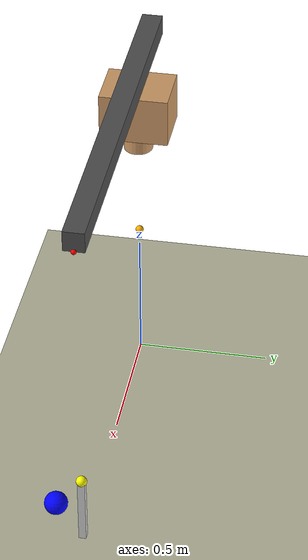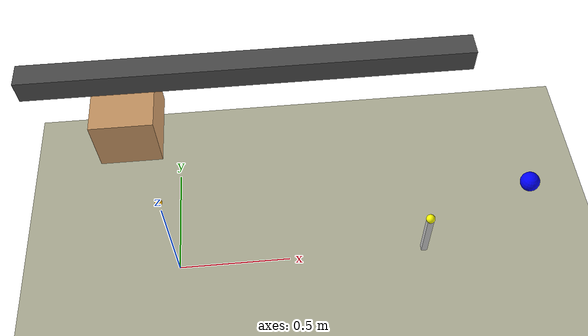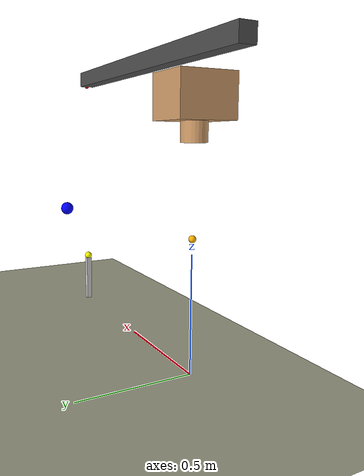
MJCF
<mujoco model="Moving Crane">
  <include file="../common.xml"/>
  <include file="crane_free_joint_copy.xml" />
  <!-- include file="prismatic_crane_4ft_double_pendulum_ball_joint.xml" / -->
  <!-- include file="no_platform_with_prismatic_crane_analytical_hinges_4ft.xml" / -->

  <!-- set userdata =model.nv+model.nq for storeing qpos and qvel from ROS-->
  <!-- add three more userdata for payload tip x, y z acc, i.e. 14+3 -->
  <size memory="1M" nuserdata="17"/>

  <custom>
    <!-- agent -->
    <numeric name="agent_planner" data="0" />
    <numeric name="agent_horizon" data="0.9" />
    <numeric name="agent_timestep" data="0.004" />
    <numeric name="agent_policy_width" data="0.0035" />
    <numeric name="sampling_spline_points" data="6" />
    <numeric name="sampling_exploration" data="0.1" />
    <numeric name="sampling_trajectories" data="30" />
    <numeric name="sampling_representation" data="0" />
    <!-- parameter -->
    <numeric name="residual_ViconX" data="1.12 -1.5 1.5" />
    <numeric name="residual_ViconY" data="0 -1.5 1.5" />
    <numeric name="residual_ViconZ" data="0.936 0.0 2.0" />
    <numeric name="residual_GoalX" data="0.8 -2 2" />
    <numeric name="residual_GoalY" data="0.4 -2 2" />
    <numeric name="residual_GoalZ" data="0.6 0.0 2" />
    <numeric name="residual_select_Modify State" data="0"/> <!-- toggle button for modify state-->
    <text name="residual_list_Modify State" data="No|Yes"/>
    <!-- estimator -->
    <!-- cause serious rollout divergence -->
    <numeric name="estimator" data="0" />
    <numeric name="estimator_sensor_start" data="4" />
    <numeric name="estimator_number_sensor" data="3" />
    <numeric name="estimator_timestep" data="0.004" />

  </custom>

  <worldbody>

    <!-- define a yellow target for crane's payload to follow -->
    <body name="target" mocap="true" pos="1.5 0 0.5">
      <geom name="target" type="sphere" size="0.04" rgba="0 0 1 1"/>
    </body>

  </worldbody>

  <contact>
        <exclude name="target_hit_paylaod" body1="target" body2="payload"/>
        <!-- exclude name="target_hit_paylaod_connector" body1="target" body2="payload_connector"/ -->
        <exclude name="target_hit_boom" body1="target" body2="boom"/>

  </contact>

  <sensor>
    <!-- cost -->
    <user name="Distance" dim="1" user="2 600 0 1000 0.04" />
    <user name="Sway_Angle" dim="1" user="2 1500 500 5000 0.04"/>
     <user name="KE" dim="1" user="2 6000 3000 10000 0.04"/>
    <user name="Control" dim="2" user="0 0.01 0.0 1.0"/>
    <!-- acceleration is too fuzzy and causes blow up of cost values-->
    <!-- user name="Payload_Acc" dim="3" user="0 1000 1000 10000"/ -->

    <!-- estimator -->
    <jointpos name="4" joint="hoist-slider"/>
    <jointvel name="5" joint="p-tip-eta-hinge"/>
    <jointvel name="6" joint="p-tip-sigma-hinge"/>

    <!-- trace -->
    <framepos name="trace0" objtype="site" objname="p_cg"/>

    <!-- residual -->
    <force name="btip_force"  site="b_tip"/>
    <force name="btip_torque"  site="b_tip"/>
    <framepos name="b_tip_pos" objtype="site" objname="b_tip"/>
    <framelinvel name="boom_vel" objtype="site" objname="b_tip"/>
    <framequat name="b_tip_quat" objtype="site" objname="p_cg"/>
    <framepos name="p_pos" objtype="site" objname="p_cg"/>
    <framepos name="p_tip" objtype="site" objname="p_tip"/>
    <framelinacc name="p_acc" objtype="body" objname="payload"/>

  </sensor>

</mujoco>

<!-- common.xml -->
<mujoco>

    <visual>
        <headlight ambient=".4 .4 .4" diffuse=".8 .8 .8" specular="0.1 0.1 0.1"/>
        <map znear=".01"/>
        <quality shadowsize="2048"/>
        <global elevation="-15"/>
    </visual>

    <asset>
        <texture name="blue_grid" type="2d" builtin="checker" rgb1=".02 .14 .44" rgb2=".27 .55 1" width="300" height="300" mark="edge" markrgb="1 1 1"/>
        <material name="blue_grid" texture="blue_grid" texrepeat="1 1" texuniform="true" reflectance=".2"/>

        <texture name="grey_grid" type="2d" builtin="checker" rgb1=".26 .26 .26" rgb2=".6 .6 .6" width="300" height="300" mark="edge" markrgb="1 1 1"/>
        <material name="grey_grid" texture="grey_grid" texrepeat="1 1" texuniform="true" reflectance=".2"/>
        <texture name="skybox" type="skybox" builtin="gradient" rgb1=".66 .79 1" rgb2=".9 .91 .93" width="800" height="800"/>

        <material name="self" rgba=".7 .5 .3 1"/>
        <material name="self_default" rgba=".7 .5 .3 1"/>
        <material name="self_highlight" rgba="0 .5 .3 1"/>
        <material name="effector" rgba=".7 .4 .2 1"/>
        <material name="effector_default" rgba=".7 .4 .2 1"/>
        <material name="effector_highlight" rgba="0 .5 .3 1"/>
        <material name="decoration" rgba=".2 .6 .3 1"/>
        <material name="eye" rgba="0 .2 1 1"/>
        <material name="target" rgba=".6 .3 .3 1"/>
        <material name="target_default" rgba=".6 .3 .3 1"/>
        <material name="target_highlight" rgba=".6 .3 .3 .4"/>
        <material name="site" rgba=".5 .5 .5 .3"/>
    </asset>

    <size memory="1M"/>

    <statistic extent="0.4" center="0.3 0.1 0"/>

    <visual>
        <quality shadowsize="8192"/>
        <global azimuth="180" elevation="-30"/>
    </visual>

    <default>
        <geom friction="1.0"/>
    </default>

    <compiler angle="radian" autolimits="true"/>

    <asset>
        <mesh name="apple" file="../../shared_assets/apple/apple.obj" />
        <mesh name="apple_contact0" file="../../shared_assets/apple/contact0.stl"  />
        <mesh name="apple_contact1" file="../../shared_assets/apple/contact1.stl"  />

        <mesh name="doorknob" file="../../shared_assets/doorknob/doorknob.obj" />

        <mesh name="flashlight" file="../../shared_assets/flashlight/flashlight.obj" />
        <mesh name="flashlight_contact0" file="../../shared_assets/flashlight/contact0.stl"  />
        <mesh name="flashlight_contact1" file="../../shared_assets/flashlight/contact1.stl"  />

        <mesh name="hammer" file="../../shared_assets/hammer/hammer.obj" />
        <mesh name="hammer_contact0" file="../../shared_assets/hammer/contact0.stl"  />
        <mesh name="hammer_contact1" file="../../shared_assets/hammer/contact1.stl"  />

        <mesh name="phone" file="../../shared_assets/phone/phone.obj" />
        <mesh name="phone_contact0" file="../../shared_assets/phone/contact0.stl"  />
        <mesh name="phone_contact1" file="../../shared_assets/phone/contact1.stl"  />
        <mesh name="phone_contact2" file="../../shared_assets/phone/contact2.stl"  />

        <mesh name="stapler" file="../../shared_assets/stapler/stapler.obj" />
        <mesh name="stapler_contact0" file="../../shared_assets/stapler/contact0.stl"  />
        <mesh name="stapler_contact1" file="../../shared_assets/stapler/contact1.stl"  />
        <mesh name="stapler_contact2" file="../../shared_assets/stapler/contact2.stl"  />
        <mesh name="stapler_contact3" file="../../shared_assets/stapler/contact3.stl"  />
        <mesh name="stapler_contact4" file="../../shared_assets/stapler/contact4.stl"  />

        <mesh name="waterbottle" file="../../shared_assets/waterbottle/waterbottle.obj" />
        <mesh name="waterbottle_contact0" file="../../shared_assets/waterbottle/contact0.stl"  />
        <mesh name="waterbottle_contact1" file="../../shared_assets/waterbottle/contact1.stl"  />
    </asset>

</mujoco>

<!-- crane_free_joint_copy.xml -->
<mujoco>
  <option integrator="implicitfast" jacobian="sparse" solver="CG" tolerance="1e-5" >
    <flag energy="enable" warmstart="enable"/>
  </option>
  <compiler autolimits="true" angle="radian"/>

  <worldbody>
    <light diffuse=".75 .75 .75" pos="0 0 10" dir="0 0 -1"/>
    <body name="floor" pos="0 0 0.00000001" >
         <geom type="plane" size="5 5 0.1" rgba=".7 .7 .6 1"/>
    </body> <!-- floor-->

    <body name="base" pos="0 0 0.984" euler="0 0 0">
     <geom name="base_geom"  type="cylinder" size="0.054 0.042 " rgba=".8 .6 .4 1" mass="0.5"/>
    <!-- joint type="free" name="free_joint"/ -->
    <!-- joint type="ball" name="ball_joint"/ -->

      <site name="crane_base" pos="0 0 0" size="0.01" />

      <body name="cab" pos="0 0 0.134" gravcomp="0">
         <site name="cab_bottom" pos="0 0 -0.092" size="0.01" />
        <joint name="slew-joint" type="hinge" axis="0 0 1" pos="0 0 -.5" limited="true" range="-1.3 1.3" armature="0.005" />
        <geom name="cab_geom" type="box" size=".100 .128 .092" rgba=".8 .6 .4 1" mass="7.935"/>

        <site name="cab_imu" pos="0 0 0" size="0.01" />

        <body name="boom" pos="0.41 0 .18" gravcomp="0">
        <!-- 0.18 = 14cm from luff actuator to top of the cab mount plate + half boom height-->
          <joint name="luff-joint" type="hinge" pos="-0.41 0 -.18" axis="0 -1 0" range="0.001 1.2" limited="true" armature="0.005" />
          <geom name="boom_geom" type="box" size="0.71 .0383 .0383" rgba=".3 .3 .3 1" contype="1" conaffinity="1" mass="5.777"/>

          <site name="boom_imu" pos="0 0 0" size="0.01" />

          <site name="b_tip" pos="0.71 0 -.038" rgba="1 0 0 1" size="0.01" />
          <body name="boom_tip" pos="0.71 0 -.038">
            <geom name="boom_tip_geom" pos="0 0 0" type="sphere" size="0.01" rgba=".3 .3 .3 1" />
            <joint name="boom-tip-beta-hinge" type="hinge" axis="1 0 0" damping="0.01" limited="true" range="-1.5 1.5"/>
            <joint name="boom-tip-phi-hinge" type="hinge" axis="0 1 0" damping="0.01" limited="true" range="-1.5 1.5"/>
            <joint name="hoist-slider" type="slide" axis="0 0 -1" limited="true" range="0.07 0.55" ref="1.0" armature="0.00032"/>

            <body name="payload_tip" pos="0 0 -1.0">
              <geom name="p_tip_geom" type="sphere" size=".02" rgba="1 1 0 1" contype="1" conaffinity="1" mass="0.01"/>
              <site name="p_tip" pos="0 0 0" size="0.01"/>
              <joint name="p-tip-eta-hinge" type="hinge" axis="1 0 0" damping="0.0001" limited="true" range="-1.5 1.5"/>
              <joint name="p-tip-sigma-hinge" type="hinge" axis="0 1 0" damping="0.0001" limited="true" range="-1.5 1.5"/>

                <body name="payload" pos="0 0 0">
                  <!-- inertial pos="0 0 -0.13" mass="0.2" diaginertia="0.0001 0.0001 0.0001"/ -->
                  <geom name="payload_geom" pos="0 0 -0.13" type="box" size="0.0135 0.0135 0.13" rgba=".8 .8 .8 1" contype="1" conaffinity="1" mass="0.2"/>
                  <site name="p_cg" pos="0 0 -0.13"/>
                </body> <!-- payload -->

            </body> <!-- payload tip-->
          </body> <!-- boom tip-->
        </body> <!-- boom -->
      </body> <!-- cab -->
    </body> <!-- base -->

    <!-- place vicon mocap under the base of the crane, on the motion platform-->
   <body name="vicon" mocap="true" pos="0 0 0.564">
      <geom name="vicon_geom" type="sphere" size="0.015" rgba="1 0.7 0 1" condim="1"/>
      <site name="vicon_marker" pos="0 0 0"/>
    </body> <!-- vicon -->

  </worldbody>

  <equality>
        <!-- weld between site1 and site2 is not supported by mjpc currently -->
        <weld name="tracking" body1="base" body2="vicon"  active="true" solimp="0.9 0.95 0.001 0.9 6"/>
    </equality>

  <contact>
        <exclude name="boom_hit_cab_in_luff" body1="cab" body2="boom"/>
        <exclude name="payload_boom" body1="payload" body2="boom"/>
        <exclude name="floor_payload" body1="floor" body2="payload"/>
        <exclude name="vicon_payload" body1="vicon" body2="payload"/>
        <exclude name="vicon_p_tip" body1="vicon" body2="payload_tip"/>

  </contact>

<actuator>
   <velocity name="slew-velocity" joint="slew-joint" kv="0.0006385" gear="100" forcerange="-68 68" ctrlrange="-120 120" />
 <velocity name="luff-velocity" joint="luff-joint" gear="200" kv="0.11" forcerange="-68 68" ctrlrange="-105 105"/>
  <!-- tuned hoist actuator-->
    <!-- velocity name="hoist-velocity" joint="hoist-slider" ctrlrange="-0.295 0.295" kv="2500" lengthrange="0.1 0.3"/ -->
</actuator>

<!-- include file="motion_platform.xml" / -->

</mujoco>
